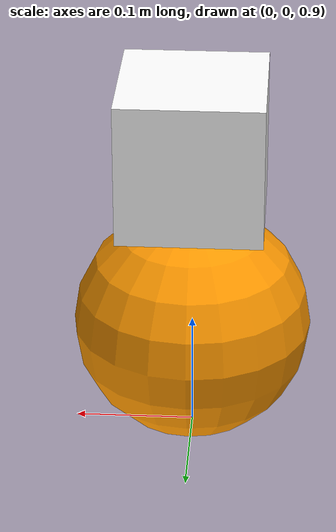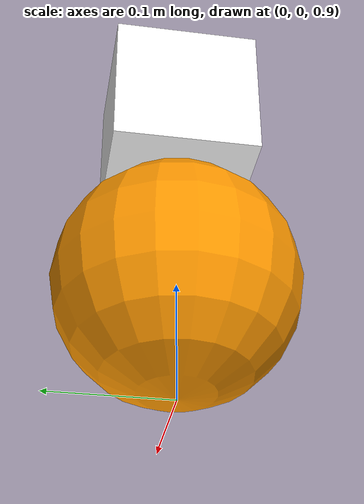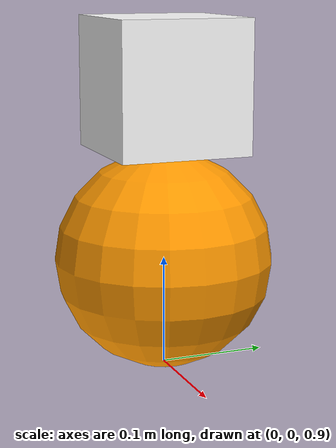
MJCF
<mujoco>
    <option gravity="0 0 -9.80" timestep="0.002"/>
    <size nstack="5000"/>

    <asset>
        <texture type="skybox" builtin="gradient" rgb1=".3 .5 .7" rgb2="0 0 0" width="32" height="512"/>
        <texture name="grid" type="2d" builtin="checker" width="512" height="512" rgb1=".1 .2 .3" rgb2=".2 .3 .4"/>
        <texture name='highlight' type='2d' builtin='gradient' rgb1='255 255 255' rgb2='255 255 255' width='512' height='512'/>
        <material name='ball' texture='highlight' texrepeat='1 1' texuniform='true'/>
        <material name="grid" texture="grid" texrepeat="1 1" texuniform="true" reflectance=".0"/>
    </asset>

    <worldbody>
        <geom name="floor" size="10 10 .05" type="plane" material="grid" friction="3.0 1.5 0.5"/>
        <light name="spotlight" mode="targetbodycom" target="bb8" diffuse=".8 .8 .8" specular="0.3 0.3 0.3" pos="0 -6 4" cutoff="30"/>
        <light name="top" pos="0 0 2" mode="trackcom"/>

        <body name='bb8' pos="0 0 1">
            <joint name='bb8_free' type="free"/>
            <geom name="bb8" type="sphere" size=".1" rgba="1 0.6 0 1" mass="2.0"/>

            <body name="head" pos="0 0 0.16">
                <joint name="head_joint"/>
                <geom name="head_geom" type="box" size=".06 .06 .06" rgba="1 1 1 1" mass="0.3"/>
            </body>
        </body>
    </worldbody>
</mujoco>
